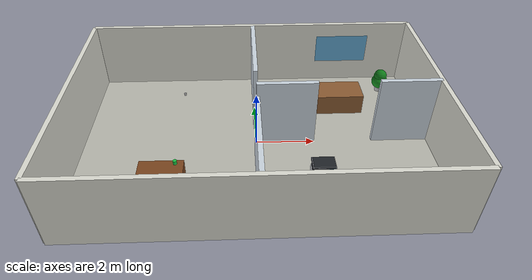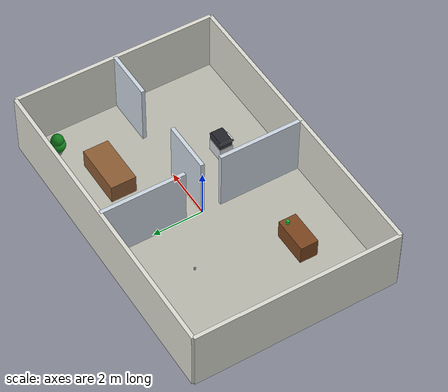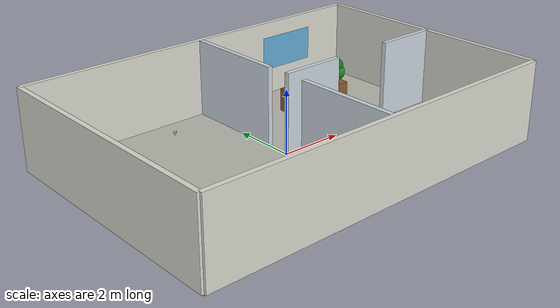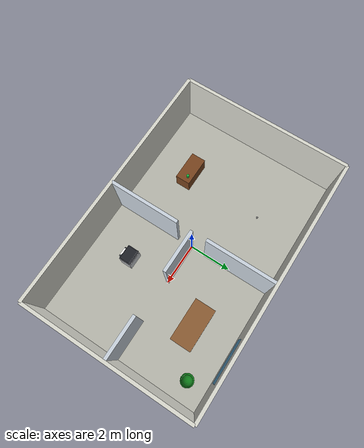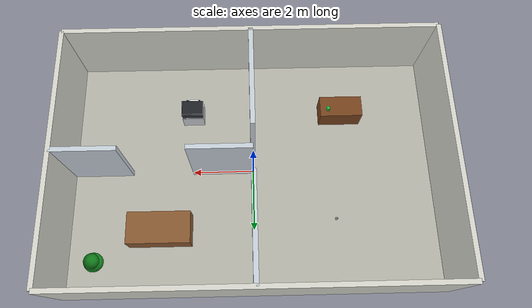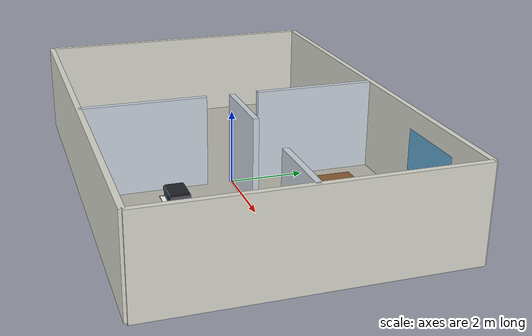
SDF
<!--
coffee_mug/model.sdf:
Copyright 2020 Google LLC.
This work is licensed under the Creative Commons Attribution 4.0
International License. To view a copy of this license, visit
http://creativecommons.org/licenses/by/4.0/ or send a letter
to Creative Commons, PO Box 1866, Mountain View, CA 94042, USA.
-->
<sdf version="1.9">
 <world name="default">
  <plugin filename="gz-sim-physics-system" name="gz::sim::systems::Physics"/>
  <plugin filename="gz-sim-sensors-system" name="gz::sim::systems::Sensors">
   <render_engine>ogre2</render_engine>
  </plugin>
  <plugin filename="gz-sim-scene-broadcaster-system" name="gz::sim::systems::SceneBroadcaster"/>
  <plugin filename="gz-sim-user-commands-system" name="gz::sim::systems::UserCommands"/>
  <gravity>0 0 -9.8</gravity>
  <physics name="default_physics" type="ode">
   <max_step_size>0.001</max_step_size>
   <real_time_factor>1.0</real_time_factor>
  </physics>
  <scene>
   <ambient>0.55 0.55 0.55 1</ambient>
   <background>0.75 0.78 0.82 1</background>
   <shadows>true</shadows>
  </scene>
  <light name="ceiling_light" type="directional">
   <pose>0 0 6 0 0 0</pose>
   <diffuse>0.9 0.9 0.9 1</diffuse>
   <specular>0.2 0.2 0.2 1</specular>
   <direction>-0.3 0.2 -1</direction>
  </light>
  <model name="floor">
   <static>true</static>
   <link name="floor_link">
    <collision name="collision"><geometry><box><size>12 8 0.1</size></box></geometry></collision>
    <visual name="visual">
     <geometry><box><size>12 8 0.1</size></box></geometry>
     <material><ambient>0.72 0.72 0.68 1</ambient><diffuse>0.72 0.72 0.68 1</diffuse></material>
    </visual>
   </link>
  </model>
  <model name="wall_north">
   <static>true</static>
   <pose>0 4 1.25 0 0 0</pose>
   <link name="link">
    <collision name="c"><geometry><box><size>12 0.15 2.5</size></box></geometry></collision>
    <visual name="v">
     <geometry><box><size>12 0.15 2.5</size></box></geometry>
     <material><diffuse>0.86 0.86 0.82 1</diffuse></material>
    </visual>
   </link>
  </model>
  <model name="wall_south">
   <static>true</static>
   <pose>0 -4 1.25 0 0 0</pose>
   <link name="link">
    <collision name="c"><geometry><box><size>12 0.15 2.5</size></box></geometry></collision>
    <visual name="v">
     <geometry><box><size>12 0.15 2.5</size></box></geometry>
     <material><diffuse>0.86 0.86 0.82 1</diffuse></material>
    </visual>
   </link>
  </model>
  <model name="wall_west">
   <static>true</static>
   <pose>-6 0 1.25 0 0 0</pose>
   <link name="link">
    <collision name="c"><geometry><box><size>0.15 8 2.5</size></box></geometry></collision>
    <visual name="v">
     <geometry><box><size>0.15 8 2.5</size></box></geometry>
     <material><diffuse>0.86 0.86 0.82 1</diffuse></material>
    </visual>
   </link>
  </model>
  <model name="wall_east">
   <static>true</static>
   <pose>6 0 1.25 0 0 0</pose>
   <link name="link">
    <collision name="c"><geometry><box><size>0.15 8 2.5</size></box></geometry></collision>
    <visual name="v">
     <geometry><box><size>0.15 8 2.5</size></box></geometry>
     <material><diffuse>0.86 0.86 0.82 1</diffuse></material>
    </visual>
   </link>
  </model>
  <model name="partition_center_north">
   <static>true</static>
   <pose>0 2.35 1.25 0 0 0</pose>
   <link name="link">
    <collision name="c"><geometry><box><size>0.15 3.3 2.5</size></box></geometry></collision>
    <visual name="v">
     <geometry><box><size>0.15 3.3 2.5</size></box></geometry>
     <material><diffuse>0.8 0.84 0.88 1</diffuse></material>
    </visual>
   </link>
  </model>
  <model name="partition_center_south">
   <static>true</static>
   <pose>0 -2.35 1.25 0 0 0</pose>
   <link name="link">
    <collision name="c"><geometry><box><size>0.15 3.3 2.5</size></box></geometry></collision>
    <visual name="v">
     <geometry><box><size>0.15 3.3 2.5</size></box></geometry>
     <material><diffuse>0.8 0.84 0.88 1</diffuse></material>
    </visual>
   </link>
  </model>
  <model name="partition_east_left">
   <static>true</static>
   <pose>1 0 1.25 0 0 0</pose>
   <link name="link">
    <collision name="c"><geometry><box><size>2 0.15 2.5</size></box></geometry></collision>
    <visual name="v">
     <geometry><box><size>2 0.15 2.5</size></box></geometry>
     <material><diffuse>0.8 0.84 0.88 1</diffuse></material>
    </visual>
   </link>
  </model>
  <model name="partition_east_right">
   <static>true</static>
   <pose>5 0 1.25 0 0 0</pose>
   <link name="link">
    <collision name="c"><geometry><box><size>2 0.15 2.5</size></box></geometry></collision>
    <visual name="v">
     <geometry><box><size>2 0.15 2.5</size></box></geometry>
     <material><diffuse>0.8 0.84 0.88 1</diffuse></material>
    </visual>
   </link>
  </model>
  <include>
   <uri>model://coffee_mug</uri>
   <name>cup_north</name>
   <pose>-2.55 1.86 0.77 0 0 0</pose>
   <static>true</static>
  </include>
  <model name="desk_south">
   <static>true</static>
   <pose>-3 -2 0.4 0 0 0</pose>
   <link name="link">
    <collision name="c"><geometry><box><size>1.4 0.7 0.8</size></box></geometry></collision>
    <visual name="v">
     <geometry><box><size>1.4 0.7 0.8</size></box></geometry>
     <material><diffuse>0.48 0.27 0.12 1</diffuse></material>
    </visual>
   </link>
  </model>
  <model name="cup_south">
   <static>true</static>
   <pose>-2.55 -1.86 0.92 0 0 0</pose>
   <link name="link">
    <collision name="c">
     <geometry><cylinder><radius>0.06</radius><length>0.14</length></cylinder></geometry>
    </collision>
    <visual name="v">
     <geometry><cylinder><radius>0.06</radius><length>0.14</length></cylinder></geometry>
     <material><diffuse>0.1 0.75 0.25 1</diffuse></material>
    </visual>
   </link>
  </model>
  <model name="meeting_table">
   <static>true</static>
   <pose>3 2 0.4 0 0 0</pose>
   <link name="link">
    <collision name="c"><geometry><box><size>2 1 0.8</size></box></geometry></collision>
    <visual name="v">
     <geometry><box><size>2 1 0.8</size></box></geometry>
     <material><diffuse>0.55 0.36 0.2 1</diffuse></material>
    </visual>
   </link>
  </model>
  <include>
   <uri>model://potted_plant</uri>
   <name>plant</name>
   <pose>5 3 0 0 0 0</pose>
   <static>true</static>
  </include>
  <include>
   <uri>model://office_printer</uri>
   <name>printer</name>
   <pose>2 -2 0 0 0 0</pose>
   <static>true</static>
  </include>
  <model name="window_north">
   <static>true</static>
   <pose>3.5 3.9 1.45 1.5708 0 0</pose>
   <link name="link">
    <visual name="v">
     <geometry><plane><normal>0 0 1</normal><size>2 1.1</size></plane></geometry>
     <material><diffuse>0.25 0.65 0.9 0.7</diffuse></material>
    </visual>
   </link>
  </model>
 </world>
</sdf>

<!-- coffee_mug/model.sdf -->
<sdf version="1.6">
  <model name="coffee_mug">
    <static>true</static>
    <link name="link_0">
      <visual name="visual">
        <geometry>
          <mesh>
            <uri>meshes/model.obj</uri>
          </mesh>
        </geometry>
      </visual>
      <collision name="collision_0">
        <pose>0 0 0.0675 0 0 0</pose>
        <geometry>
          <cylinder><radius>0.065</radius><length>0.135</length></cylinder>
        </geometry>
      </collision>
    </link>
  </model>
</sdf>

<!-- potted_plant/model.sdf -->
<sdf version="1.6">
  <model name="potted_plant">
    <static>true</static>
    <link name="link_0">
      <visual name="pot_visual">
        <geometry>
          <mesh>
            <uri>meshes/model.obj</uri>
            <scale>4.5 4.5 4.5</scale>
          </mesh>
        </geometry>
      </visual>
      <visual name="foliage_lower">
        <pose>0 0 0.48 0 0 0</pose>
        <geometry><sphere><radius>0.30</radius></sphere></geometry>
        <material><ambient>0.05 0.35 0.08 1</ambient><diffuse>0.08 0.55 0.12 1</diffuse></material>
      </visual>
      <visual name="foliage_upper">
        <pose>0 0 0.72 0 0 0</pose>
        <geometry><sphere><radius>0.24</radius></sphere></geometry>
        <material><ambient>0.04 0.30 0.07 1</ambient><diffuse>0.06 0.48 0.10 1</diffuse></material>
      </visual>
      <collision name="plant_collision">
        <pose>0 0 0.43 0 0 0</pose>
        <geometry><cylinder><radius>0.30</radius><length>0.86</length></cylinder></geometry>
      </collision>
    </link>
  </model>
</sdf>

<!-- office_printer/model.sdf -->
<sdf version="1.9">
  <model name="office_printer">
    <static>true</static>
    <link name="body">
      <!-- Keep the collision footprint identical to the obstacle encoded in
           semantic_office_lab.pgm. -->
      <collision name="collision">
        <pose>0 0 0.45 0 0 0</pose>
        <geometry><box><size>0.8 0.6 0.9</size></box></geometry>
      </collision>

      <visual name="cabinet">
        <pose>0 0 0.30 0 0 0</pose>
        <geometry><box><size>0.72 0.54 0.60</size></box></geometry>
        <material><ambient>0.72 0.73 0.75 1</ambient><diffuse>0.82 0.83 0.85 1</diffuse></material>
      </visual>
      <visual name="cabinet_divider">
        <pose>0 -0.276 0.32 0 0 0</pose>
        <geometry><box><size>0.62 0.012 0.025</size></box></geometry>
        <material><ambient>0.18 0.19 0.21 1</ambient><diffuse>0.25 0.26 0.28 1</diffuse></material>
      </visual>
      <visual name="printer_body">
        <pose>0 0 0.70 0 0 0</pose>
        <geometry><box><size>0.68 0.50 0.20</size></box></geometry>
        <material><ambient>0.13 0.14 0.16 1</ambient><diffuse>0.20 0.21 0.24 1</diffuse></material>
      </visual>
      <visual name="output_slot">
        <pose>0 -0.256 0.70 0 0 0</pose>
        <geometry><box><size>0.42 0.018 0.08</size></box></geometry>
        <material><ambient>0.01 0.01 0.015 1</ambient><diffuse>0.02 0.02 0.025 1</diffuse></material>
      </visual>
      <visual name="output_tray">
        <pose>0 -0.31 0.66 -0.18 0 0</pose>
        <geometry><box><size>0.46 0.16 0.025</size></box></geometry>
        <material><ambient>0.12 0.13 0.15 1</ambient><diffuse>0.19 0.20 0.22 1</diffuse></material>
      </visual>
      <visual name="paper">
        <pose>0 -0.32 0.68 -0.18 0 0</pose>
        <geometry><box><size>0.36 0.15 0.008</size></box></geometry>
        <material><ambient>0.92 0.92 0.90 1</ambient><diffuse>0.98 0.98 0.96 1</diffuse></material>
      </visual>
      <visual name="scanner">
        <pose>0 0 0.83 0 0 0</pose>
        <geometry><box><size>0.72 0.52 0.08</size></box></geometry>
        <material><ambient>0.24 0.25 0.27 1</ambient><diffuse>0.34 0.35 0.38 1</diffuse></material>
      </visual>
      <visual name="scanner_lid">
        <pose>0 0 0.89 0 0 0</pose>
        <geometry><box><size>0.66 0.46 0.04</size></box></geometry>
        <material><ambient>0.08 0.09 0.10 1</ambient><diffuse>0.13 0.14 0.16 1</diffuse></material>
      </visual>
      <visual name="control_panel">
        <pose>0.22 -0.275 0.82 1.30 0 0</pose>
        <geometry><box><size>0.20 0.09 0.025</size></box></geometry>
        <material><ambient>0.03 0.09 0.13 1</ambient><diffuse>0.04 0.18 0.25 1</diffuse><emissive>0.01 0.08 0.12 1</emissive></material>
      </visual>
    </link>
  </model>
</sdf>
